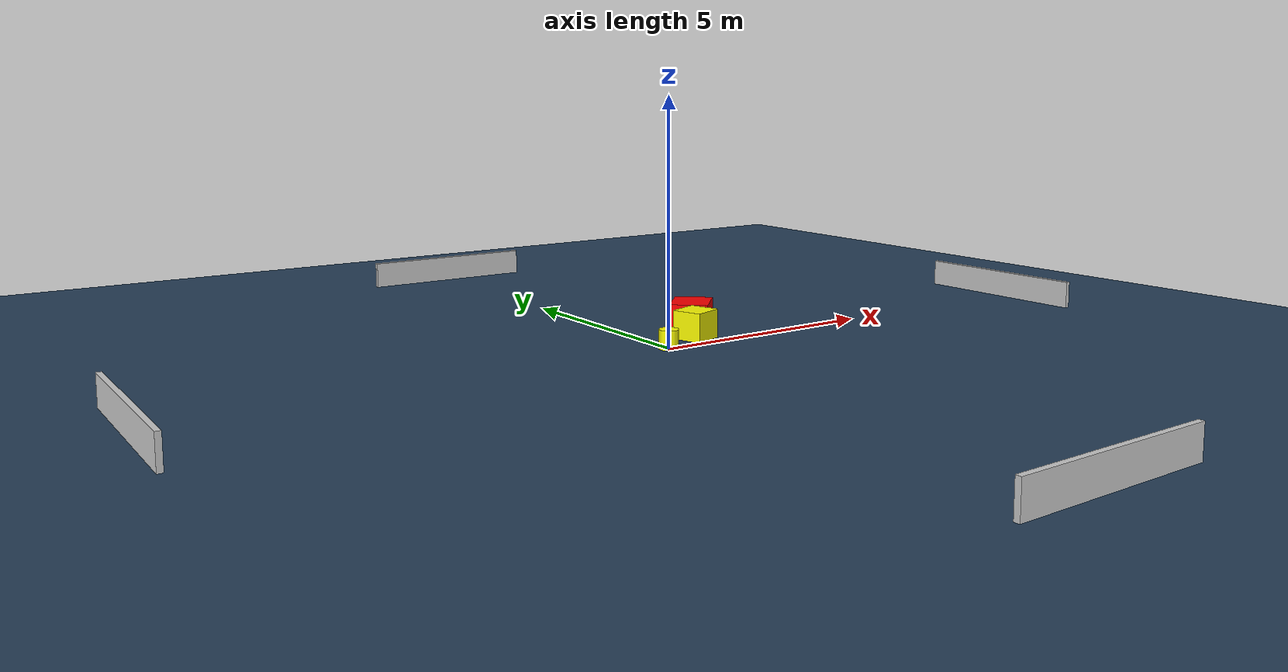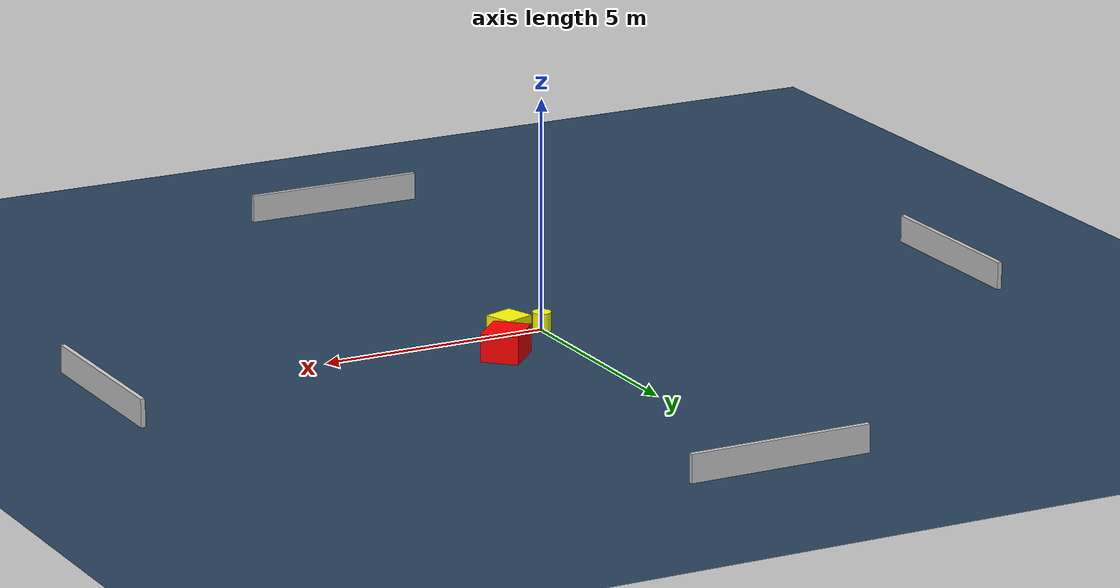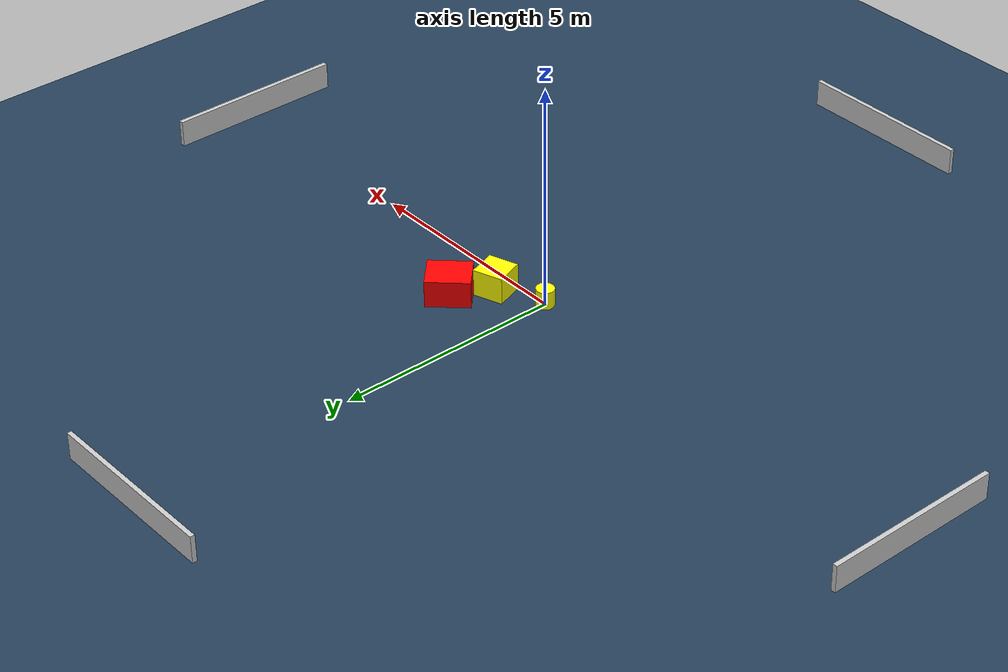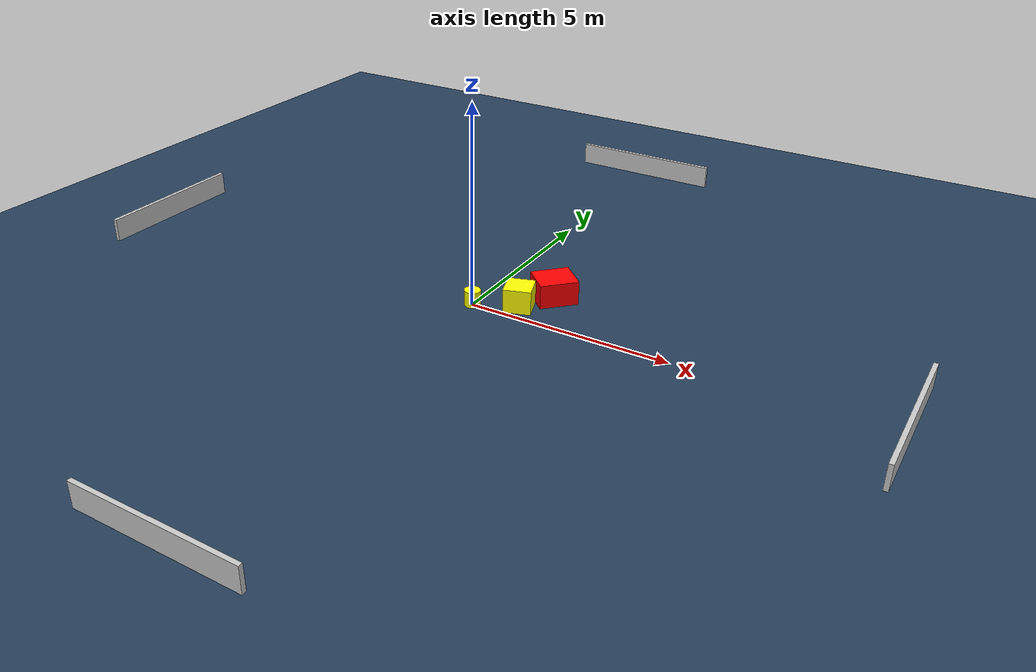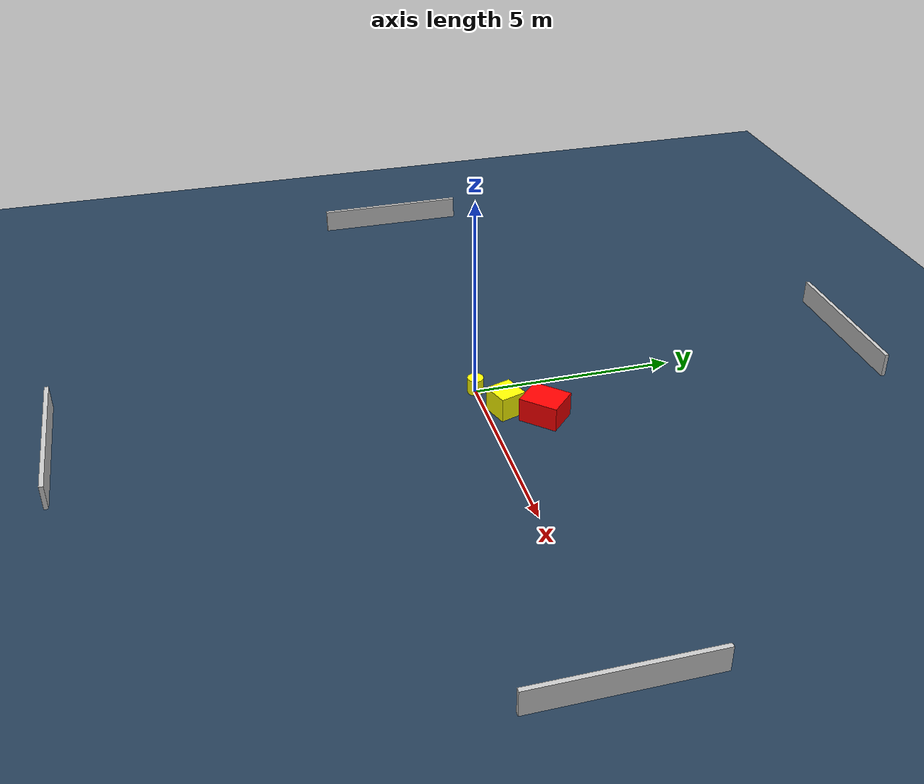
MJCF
<?xml version="1.0" ?>
<mujoco model="generated_environment">
  <option timestep="0.01" integrator="RK4" cone="elliptic"/>
  <default>
    <geom density="1"/>
  </default>
  <asset>
    <texture builtin="gradient" height="3072" name="skybox" rgb1="0.3 0.5 0.7" rgb2="0 0 0" type="skybox" width="512"/>
    <texture builtin="checker" height="300" name="groundplane" rgb1="0.2 0.3 0.4" rgb2="0.1 0.2 0.3" type="2d" width="300"/>
    <material name="groundplane" reflectance="0.2" texrepeat="5 5" texture="groundplane"/>
  </asset>
  <worldbody>
    <light dir="0 0 -1" directional="true" pos="0 0 1.5"/>
    <geom condim="3" friction="0.5 0.005 0.001" material="groundplane" name="floor" pos="0 0 0" size="0 0 0.05" type="plane"/>
    <body name="walls">
      <geom name="wall_1" condim="4" pos="-10.0 0.0 0.3" rgba="0.800000011920929 0.800000011920929 0.800000011920929 1.0" size="0.05 2.0 0.3" type="box"/>
      <geom name="wall_2" condim="4" pos="10.0 0.0 0.3" rgba="0.800000011920929 0.800000011920929 0.800000011920929 1.0" size="0.05 2.0 0.3" type="box"/>
      <geom name="wall_3" condim="4" pos="0.0 -10.0 0.3" rgba="0.800000011920929 0.800000011920929 0.800000011920929 1.0" size="2.0 0.05 0.3" type="box"/>
      <geom name="wall_4" condim="4" pos="0.0 10.0 0.3" rgba="0.800000011920929 0.800000011920929 0.800000011920929 1.0" size="2.0 0.05 0.3" type="box"/>
    </body>
    <body name="robot">
      <joint name="joint_x" type="slide" pos="0 0 0" axis="1 0 0"/>
      <joint name="joint_y" type="slide" pos="0 0 0" axis="0 1 0"/>
      <geom name="robot" type="cylinder" pos="0.0 0.0 0.2" size="0.2 0.2 0.0" mass="5.0" friction="1.0 0.005 0.0001" condim="4" rgba="1.0 1.0 0.0 1.0"/>
    </body>
    <body name="obstacle_1_movable">
      <geom name="obstacle_1_movable" condim="4" pos="1.0094851682845642 0.4620379979609459 0.3" euler="0 0 108.65969663396773" friction="0.0 0.005 0.001" rgba="1.0 1.0 0.0 1.0" size="0.32565479295304733 0.3354858460717962 0.3" type="box" mass="0.1"/>
      <joint type="free"/>
    </body>
    <body name="obstacle_2_static">
      <geom name="obstacle_2_static" condim="4" pos="1.508241996372229 1.2805955542213479 0.3" euler="0 0 136.1169522719777" friction="0.0 0.005 0.001" rgba="1.0 0.0 0.0 1.0" size="0.4070823400427887 0.47875423121643107 0.3" type="box"/>
    </body>
  </worldbody>
  <actuator>
    <motor name="actuator_x" joint="joint_x" gear="1" ctrlrange="-1 1"/>
    <motor name="actuator_y" joint="joint_y" gear="1" ctrlrange="-1 1"/>
  </actuator>
</mujoco>
